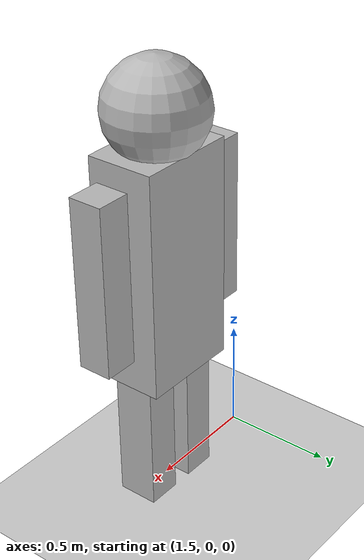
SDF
<?xml version="1.0" ?>

<sdf version="1.9">
  <world name="smartcart_world">

    <!-- =========================
         GAZEBO SYSTEMS
         ========================= -->

    <!-- Physics -->
    <plugin
      filename="gz-sim-physics-system"
      name="gz::sim::systems::Physics">
    </plugin>

    <!-- Scene rendering -->
    <plugin
      filename="gz-sim-scene-broadcaster-system"
      name="gz::sim::systems::SceneBroadcaster">
    </plugin>

    <!-- LiDAR / Camera sensors -->
    <plugin
      filename="gz-sim-sensors-system"
      name="gz::sim::systems::Sensors">
      <render_engine>ogre2</render_engine>
    </plugin>

    <!-- Required for ros_gz_sim robot spawning -->
    <plugin
      filename="gz-sim-user-commands-system"
      name="gz::sim::systems::UserCommands">
    </plugin>

    <!-- =========================
         PHYSICS
         ========================= -->

    <physics name="default_physics" type="ode">
      <max_step_size>0.001</max_step_size>
      <real_time_factor>1</real_time_factor>
      <real_time_update_rate>1000</real_time_update_rate>
    </physics>

    <!-- =========================
         GROUND
         ========================= -->

    <model name="ground_plane">
      <static>true</static>

      <link name="ground">

        <collision name="collision">
          <geometry>
            <plane>
              <normal>0 0 1</normal>
              <size>100 100</size>
            </plane>
          </geometry>
        </collision>

        <visual name="visual">
          <geometry>
            <plane>
              <normal>0 0 1</normal>
              <size>100 100</size>
            </plane>
          </geometry>
        </visual>

      </link>
    </model>

    <!-- =========================
         SUN / LIGHT
         ========================= -->

    <light
      name="sun"
      type="directional">

      <pose>0 0 10 0 0 0</pose>

      <diffuse>0.8 0.8 0.8 1</diffuse>
      <specular>0.2 0.2 0.2 1</specular>

      <direction>-0.5 0.5 -1</direction>

    </light>
    <include>
	  <uri>model://human</uri>
	  <name>human</name>
	  <pose>2 0 0 0 0 0</pose>
   </include>

  </world>
</sdf>

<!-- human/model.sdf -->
<sdf version="1.9">
  <model name="human">

    <pose>2 0 0 0 0 0</pose>

    <link name="body">

      <!-- Torso -->
      <visual name="torso_visual">
        <pose>0 0 1.1 0 0 0</pose>
        <geometry>
          <box>
            <size>0.45 0.30 1.0</size>
          </box>
        </geometry>
      </visual>

      <collision name="torso_collision">
        <pose>0 0 1.1 0 0 0</pose>
        <geometry>
          <box>
            <size>0.45 0.30 1.0</size>
          </box>
        </geometry>
      </collision>

      <!-- Head -->
      <visual name="head_visual">
        <pose>0 0 1.75 0 0 0</pose>
        <geometry>
          <sphere>
            <radius>0.22</radius>
          </sphere>
        </geometry>
      </visual>

      <collision name="head_collision">
        <pose>0 0 1.75 0 0 0</pose>
        <geometry>
          <sphere>
            <radius>0.22</radius>
          </sphere>
        </geometry>
      </collision>

      <!-- Left leg -->
      <visual name="left_leg_visual">
        <pose>-0.12 0 0.35 0 0 0</pose>
        <geometry>
          <box>
            <size>0.15 0.18 0.70</size>
          </box>
        </geometry>
      </visual>

      <collision name="left_leg_collision">
        <pose>-0.12 0 0.35 0 0 0</pose>
        <geometry>
          <box>
            <size>0.15 0.18 0.70</size>
          </box>
        </geometry>
      </collision>

      <!-- Right leg -->
      <visual name="right_leg_visual">
        <pose>0.12 0 0.35 0 0 0</pose>
        <geometry>
          <box>
            <size>0.15 0.18 0.70</size>
          </box>
        </geometry>
      </visual>

      <collision name="right_leg_collision">
        <pose>0.12 0 0.35 0 0 0</pose>
        <geometry>
          <box>
            <size>0.15 0.18 0.70</size>
          </box>
        </geometry>
      </collision>

      <!-- Left arm -->
      <visual name="left_arm_visual">
        <pose>-0.34 0 1.15 0 0 0</pose>
        <geometry>
          <box>
            <size>0.15 0.15 0.75</size>
          </box>
        </geometry>
      </visual>

      <collision name="left_arm_collision">
        <pose>-0.34 0 1.15 0 0 0</pose>
        <geometry>
          <box>
            <size>0.15 0.15 0.75</size>
          </box>
        </geometry>
      </collision>

      <!-- Right arm -->
      <visual name="right_arm_visual">
        <pose>0.34 0 1.15 0 0 0</pose>
        <geometry>
          <box>
            <size>0.15 0.15 0.75</size>
          </box>
        </geometry>
      </visual>

      <collision name="right_arm_collision">
        <pose>0.34 0 1.15 0 0 0</pose>
        <geometry>
          <box>
            <size>0.15 0.15 0.75</size>
          </box>
        </geometry>
      </collision>

      <inertial>
        <mass>70</mass>
        <inertia>
          <ixx>10</ixx>
          <iyy>10</iyy>
          <izz>10</izz>
          <ixy>0</ixy>
          <ixz>0</ixz>
          <iyz>0</iyz>
        </inertia>
      </inertial>

    </link>

  </model>
</sdf>
